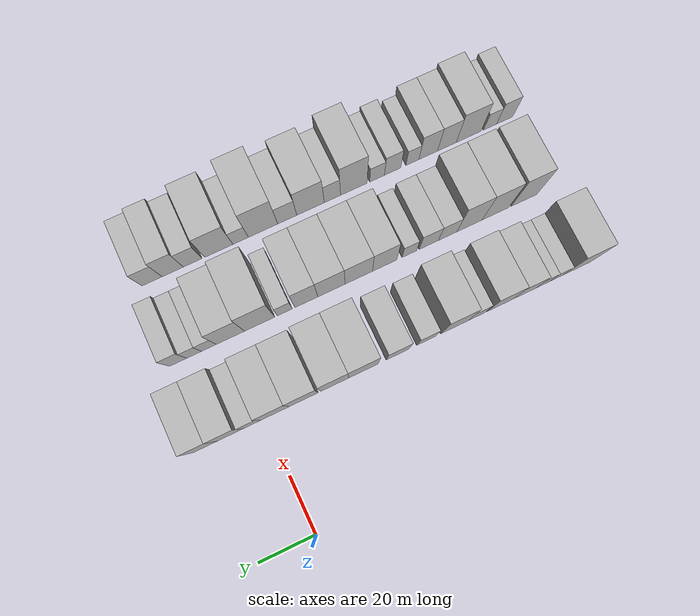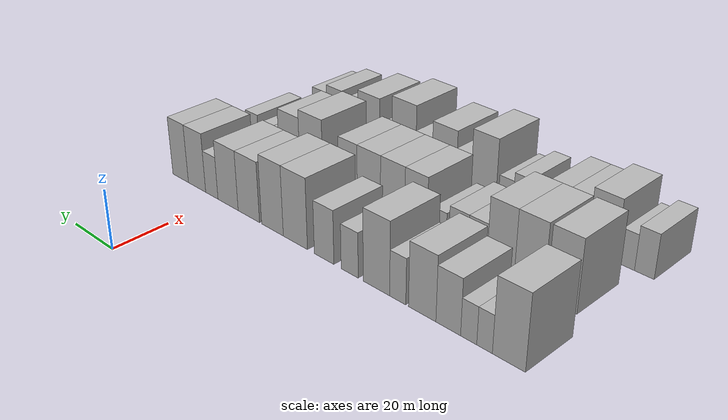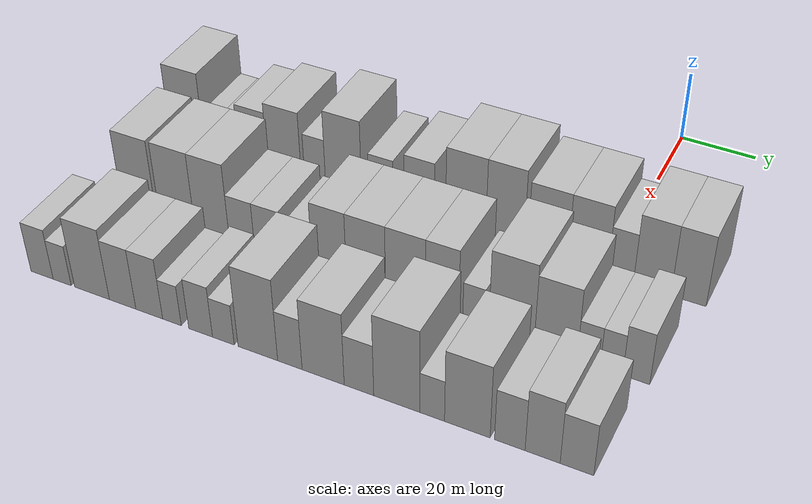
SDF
<sdf version="1.6">
 <world name="default">
  <model name="building_26">
   <static>1</static>
   <pose>50.0000 -116.0989 0 0.000000 0.000000 0.000000</pose>
   <link name="link">
    <pose>0 0 12.00 0 0 0</pose>
    <collision name="collision"><geometry><box><size>20.0000 10.5547 24.0000</size></box></geometry></collision>
    <visual name="visual">
     <cast_shadows>0</cast_shadows>
     <geometry><box><size>20.0000 10.5547 24.0000</size></box></geometry>
     <material>
      <script>
       <uri>model://HANNAS_wall/materials/scripts</uri>
       <uri>model://HANNAS_wall/materials/textures</uri>
       <name>vrc/HANNAS_wall</name>
      </script>
     </material>
    </visual>
   </link>
  </model>
  <model name="building_27">
   <static>1</static>
   <pose>50.0000 -108.2517 0 0.000000 0.000000 0.000000</pose>
   <link name="link">
    <pose>0 0 6.00 0 0 0</pose>
    <collision name="collision"><geometry><box><size>20.0000 5.1396 12.0000</size></box></geometry></collision>
    <visual name="visual">
     <cast_shadows>0</cast_shadows>
     <geometry><box><size>20.0000 5.1396 12.0000</size></box></geometry>
     <material>
      <script>
       <uri>model://HANNAS_wall/materials/scripts</uri>
       <uri>model://HANNAS_wall/materials/textures</uri>
       <name>vrc/HANNAS_wall</name>
      </script>
     </material>
    </visual>
   </link>
  </model>
  <model name="building_28">
   <static>1</static>
   <pose>50.0000 -102.9619 0 0.000000 0.000000 0.000000</pose>
   <link name="link">
    <pose>0 0 6.00 0 0 0</pose>
    <collision name="collision"><geometry><box><size>20.0000 5.4400 12.0000</size></box></geometry></collision>
    <visual name="visual">
     <cast_shadows>0</cast_shadows>
     <geometry><box><size>20.0000 5.4400 12.0000</size></box></geometry>
     <material>
      <script>
       <uri>model://HANNAS_wall/materials/scripts</uri>
       <uri>model://HANNAS_wall/materials/textures</uri>
       <name>vrc/HANNAS_wall</name>
      </script>
     </material>
    </visual>
   </link>
  </model>
  <model name="building_29">
   <static>1</static>
   <pose>50.0000 -95.9530 0 0.000000 0.000000 0.000000</pose>
   <link name="link">
    <pose>0 0 9.00 0 0 0</pose>
    <collision name="collision"><geometry><box><size>20.0000 8.5779 18.0000</size></box></geometry></collision>
    <visual name="visual">
     <cast_shadows>0</cast_shadows>
     <geometry><box><size>20.0000 8.5779 18.0000</size></box></geometry>
     <material>
      <script>
       <uri>model://HANNAS_wall/materials/scripts</uri>
       <uri>model://HANNAS_wall/materials/textures</uri>
       <name>vrc/HANNAS_wall</name>
      </script>
     </material>
    </visual>
   </link>
  </model>
  <model name="building_30">
   <static>1</static>
   <pose>50.0000 -86.7007 0 0.000000 0.000000 0.000000</pose>
   <link name="link">
    <pose>0 0 10.50 0 0 0</pose>
    <collision name="collision"><geometry><box><size>20.0000 9.9268 21.0000</size></box></geometry></collision>
    <visual name="visual">
     <cast_shadows>0</cast_shadows>
     <geometry><box><size>20.0000 9.9268 21.0000</size></box></geometry>
     <material>
      <script>
       <uri>model://HANNAS_wall/materials/scripts</uri>
       <uri>model://HANNAS_wall/materials/textures</uri>
       <name>vrc/HANNAS_wall</name>
      </script>
     </material>
    </visual>
   </link>
  </model>
  <model name="building_31">
   <static>1</static>
   <pose>50.0000 -77.7047 0 0.000000 0.000000 0.000000</pose>
   <link name="link">
    <pose>0 0 7.50 0 0 0</pose>
    <collision name="collision"><geometry><box><size>20.0000 6.0651 15.0000</size></box></geometry></collision>
    <visual name="visual">
     <cast_shadows>0</cast_shadows>
     <geometry><box><size>20.0000 6.0651 15.0000</size></box></geometry>
     <material>
      <script>
       <uri>model://HANNAS_wall/materials/scripts</uri>
       <uri>model://HANNAS_wall/materials/textures</uri>
       <name>vrc/HANNAS_wall</name>
      </script>
     </material>
    </visual>
   </link>
  </model>
  <model name="building_32">
   <static>1</static>
   <pose>50.0000 -69.5270 0 0.000000 0.000000 0.000000</pose>
   <link name="link">
    <pose>0 0 12.00 0 0 0</pose>
    <collision name="collision"><geometry><box><size>20.0000 10.2904 24.0000</size></box></geometry></collision>
    <visual name="visual">
     <cast_shadows>0</cast_shadows>
     <geometry><box><size>20.0000 10.2904 24.0000</size></box></geometry>
     <material>
      <script>
       <uri>model://HANNAS_wall/materials/scripts</uri>
       <uri>model://HANNAS_wall/materials/textures</uri>
       <name>vrc/HANNAS_wall</name>
      </script>
     </material>
    </visual>
   </link>
  </model>
  <model name="building_33">
   <static>1</static>
   <pose>50.0000 -58.9242 0 0.000000 0.000000 0.000000</pose>
   <link name="link">
    <pose>0 0 7.50 0 0 0</pose>
    <collision name="collision"><geometry><box><size>20.0000 6.9151 15.0000</size></box></geometry></collision>
    <visual name="visual">
     <cast_shadows>0</cast_shadows>
     <geometry><box><size>20.0000 6.9151 15.0000</size></box></geometry>
     <material>
      <script>
       <uri>model://HANNAS_wall/materials/scripts</uri>
       <uri>model://HANNAS_wall/materials/textures</uri>
       <name>vrc/HANNAS_wall</name>
      </script>
     </material>
    </visual>
   </link>
  </model>
  <model name="building_34">
   <static>1</static>
   <pose>50.0000 -48.3323 0 0.000000 0.000000 0.000000</pose>
   <link name="link">
    <pose>0 0 9.00 0 0 0</pose>
    <collision name="collision"><geometry><box><size>20.0000 8.2686 18.0000</size></box></geometry></collision>
    <visual name="visual">
     <cast_shadows>0</cast_shadows>
     <geometry><box><size>20.0000 8.2686 18.0000</size></box></geometry>
     <material>
      <script>
       <uri>model://HANNAS_wall/materials/scripts</uri>
       <uri>model://HANNAS_wall/materials/textures</uri>
       <name>vrc/HANNAS_wall</name>
      </script>
     </material>
    </visual>
   </link>
  </model>
  <model name="building_35">
   <static>1</static>
   <pose>50.0000 -35.8312 0 0.000000 0.000000 0.000000</pose>
   <link name="link">
    <pose>0 0 12.00 0 0 0</pose>
    <collision name="collision"><geometry><box><size>20.0000 10.7336 24.0000</size></box></geometry></collision>
    <visual name="visual">
     <cast_shadows>0</cast_shadows>
     <geometry><box><size>20.0000 10.7336 24.0000</size></box></geometry>
     <material>
      <script>
       <uri>model://HANNAS_wall/materials/scripts</uri>
       <uri>model://HANNAS_wall/materials/textures</uri>
       <name>vrc/HANNAS_wall</name>
      </script>
     </material>
    </visual>
   </link>
  </model>
  <model name="building_36">
   <static>1</static>
   <pose>50.0000 -25.4489 0 0.000000 0.000000 0.000000</pose>
   <link name="link">
    <pose>0 0 12.00 0 0 0</pose>
    <collision name="collision"><geometry><box><size>20.0000 10.0312 24.0000</size></box></geometry></collision>
    <visual name="visual">
     <cast_shadows>0</cast_shadows>
     <geometry><box><size>20.0000 10.0312 24.0000</size></box></geometry>
     <material>
      <script>
       <uri>model://HANNAS_wall/materials/scripts</uri>
       <uri>model://HANNAS_wall/materials/textures</uri>
       <name>vrc/HANNAS_wall</name>
      </script>
     </material>
    </visual>
   </link>
  </model>
  <model name="building_37">
   <static>1</static>
   <pose>50.0000 -14.2747 0 0.000000 0.000000 0.000000</pose>
   <link name="link">
    <pose>0 0 10.50 0 0 0</pose>
    <collision name="collision"><geometry><box><size>20.0000 10.3172 21.0000</size></box></geometry></collision>
    <visual name="visual">
     <cast_shadows>0</cast_shadows>
     <geometry><box><size>20.0000 10.3172 21.0000</size></box></geometry>
     <material>
      <script>
       <uri>model://HANNAS_wall/materials/scripts</uri>
       <uri>model://HANNAS_wall/materials/textures</uri>
       <name>vrc/HANNAS_wall</name>
      </script>
     </material>
    </visual>
   </link>
  </model>
  <model name="building_38">
   <static>1</static>
   <pose>50.0000 -4.0690 0 0.000000 0.000000 0.000000</pose>
   <link name="link">
    <pose>0 0 10.50 0 0 0</pose>
    <collision name="collision"><geometry><box><size>20.0000 10.0940 21.0000</size></box></geometry></collision>
    <visual name="visual">
     <cast_shadows>0</cast_shadows>
     <geometry><box><size>20.0000 10.0940 21.0000</size></box></geometry>
     <material>
      <script>
       <uri>model://HANNAS_wall/materials/scripts</uri>
       <uri>model://HANNAS_wall/materials/textures</uri>
       <name>vrc/HANNAS_wall</name>
      </script>
     </material>
    </visual>
   </link>
  </model>
  <model name="building_39">
   <static>1</static>
   <pose>50.0000 4.1592 0 0.000000 0.000000 0.000000</pose>
   <link name="link">
    <pose>0 0 7.50 0 0 0</pose>
    <collision name="collision"><geometry><box><size>20.0000 6.3625 15.0000</size></box></geometry></collision>
    <visual name="visual">
     <cast_shadows>0</cast_shadows>
     <geometry><box><size>20.0000 6.3625 15.0000</size></box></geometry>
     <material>
      <script>
       <uri>model://HANNAS_wall/materials/scripts</uri>
       <uri>model://HANNAS_wall/materials/textures</uri>
       <name>vrc/HANNAS_wall</name>
      </script>
     </material>
    </visual>
   </link>
  </model>
  <model name="building_40">
   <static>1</static>
   <pose>50.0000 11.9197 0 0.000000 0.000000 0.000000</pose>
   <link name="link">
    <pose>0 0 10.50 0 0 0</pose>
    <collision name="collision"><geometry><box><size>20.0000 9.1584 21.0000</size></box></geometry></collision>
    <visual name="visual">
     <cast_shadows>0</cast_shadows>
     <geometry><box><size>20.0000 9.1584 21.0000</size></box></geometry>
     <material>
      <script>
       <uri>model://HANNAS_wall/materials/scripts</uri>
       <uri>model://HANNAS_wall/materials/textures</uri>
       <name>vrc/HANNAS_wall</name>
      </script>
     </material>
    </visual>
   </link>
  </model>
  <model name="building_41">
   <static>1</static>
   <pose>50.0000 20.7276 0 0.000000 0.000000 0.000000</pose>
   <link name="link">
    <pose>0 0 10.50 0 0 0</pose>
    <collision name="collision"><geometry><box><size>20.0000 8.4575 21.0000</size></box></geometry></collision>
    <visual name="visual">
     <cast_shadows>0</cast_shadows>
     <geometry><box><size>20.0000 8.4575 21.0000</size></box></geometry>
     <material>
      <script>
       <uri>model://HANNAS_wall/materials/scripts</uri>
       <uri>model://HANNAS_wall/materials/textures</uri>
       <name>vrc/HANNAS_wall</name>
      </script>
     </material>
    </visual>
   </link>
  </model>
  <model name="building_99">
   <static>1</static>
   <pose>79.0000 -111.3327 0 0.000000 0.000000 0.000000</pose>
   <link name="link">
    <pose>0 0 12.00 0 0 0</pose>
    <collision name="collision"><geometry><box><size>20.0000 10.0798 24.0000</size></box></geometry></collision>
    <visual name="visual">
     <cast_shadows>0</cast_shadows>
     <geometry><box><size>20.0000 10.0798 24.0000</size></box></geometry>
     <material>
      <script>
       <uri>model://HANNAS_wall/materials/scripts</uri>
       <uri>model://HANNAS_wall/materials/textures</uri>
       <name>vrc/HANNAS_wall</name>
      </script>
     </material>
    </visual>
   </link>
  </model>
  <model name="building_100">
   <static>1</static>
   <pose>79.0000 -100.1573 0 0.000000 0.000000 0.000000</pose>
   <link name="link">
    <pose>0 0 12.00 0 0 0</pose>
    <collision name="collision"><geometry><box><size>20.0000 10.2710 24.0000</size></box></geometry></collision>
    <visual name="visual">
     <cast_shadows>0</cast_shadows>
     <geometry><box><size>20.0000 10.2710 24.0000</size></box></geometry>
     <material>
      <script>
       <uri>model://HANNAS_wall/materials/scripts</uri>
       <uri>model://HANNAS_wall/materials/textures</uri>
       <name>vrc/HANNAS_wall</name>
      </script>
     </material>
    </visual>
   </link>
  </model>
  <model name="building_101">
   <static>1</static>
   <pose>79.0000 -90.1085 0 0.000000 0.000000 0.000000</pose>
   <link name="link">
    <pose>0 0 12.00 0 0 0</pose>
    <collision name="collision"><geometry><box><size>20.0000 9.8265 24.0000</size></box></geometry></collision>
    <visual name="visual">
     <cast_shadows>0</cast_shadows>
     <geometry><box><size>20.0000 9.8265 24.0000</size></box></geometry>
     <material>
      <script>
       <uri>model://HANNAS_wall/materials/scripts</uri>
       <uri>model://HANNAS_wall/materials/textures</uri>
       <name>vrc/HANNAS_wall</name>
      </script>
     </material>
    </visual>
   </link>
  </model>
  <model name="building_102">
   <static>1</static>
   <pose>79.0000 -81.6660 0 0.000000 0.000000 0.000000</pose>
   <link name="link">
    <pose>0 0 7.50 0 0 0</pose>
    <collision name="collision"><geometry><box><size>20.0000 7.0586 15.0000</size></box></geometry></collision>
    <visual name="visual">
     <cast_shadows>0</cast_shadows>
     <geometry><box><size>20.0000 7.0586 15.0000</size></box></geometry>
     <material>
      <script>
       <uri>model://HANNAS_wall/materials/scripts</uri>
       <uri>model://HANNAS_wall/materials/textures</uri>
       <name>vrc/HANNAS_wall</name>
      </script>
     </material>
    </visual>
   </link>
  </model>
  <model name="building_103">
   <static>1</static>
   <pose>79.0000 -74.4767 0 0.000000 0.000000 0.000000</pose>
   <link name="link">
    <pose>0 0 7.50 0 0 0</pose>
    <collision name="collision"><geometry><box><size>20.0000 7.3200 15.0000</size></box></geometry></collision>
    <visual name="visual">
     <cast_shadows>0</cast_shadows>
     <geometry><box><size>20.0000 7.3200 15.0000</size></box></geometry>
     <material>
      <script>
       <uri>model://HANNAS_wall/materials/scripts</uri>
       <uri>model://HANNAS_wall/materials/textures</uri>
       <name>vrc/HANNAS_wall</name>
      </script>
     </material>
    </visual>
   </link>
  </model>
  <model name="building_104">
   <static>1</static>
   <pose>79.0000 -67.0640 0 0.000000 0.000000 0.000000</pose>
   <link name="link">
    <pose>0 0 6.00 0 0 0</pose>
    <collision name="collision"><geometry><box><size>20.0000 5.5054 12.0000</size></box></geometry></collision>
    <visual name="visual">
     <cast_shadows>0</cast_shadows>
     <geometry><box><size>20.0000 5.5054 12.0000</size></box></geometry>
     <material>
      <script>
       <uri>model://HANNAS_wall/materials/scripts</uri>
       <uri>model://HANNAS_wall/materials/textures</uri>
       <name>vrc/HANNAS_wall</name>
      </script>
     </material>
    </visual>
   </link>
  </model>
  <model name="building_105">
   <static>1</static>
   <pose>79.0000 -57.7347 0 0.000000 0.000000 0.000000</pose>
   <link name="link">
    <pose>0 0 10.50 0 0 0</pose>
    <collision name="collision"><geometry><box><size>20.0000 9.1532 21.0000</size></box></geometry></collision>
    <visual name="visual">
     <cast_shadows>0</cast_shadows>
     <geometry><box><size>20.0000 9.1532 21.0000</size></box></geometry>
     <material>
      <script>
       <uri>model://HANNAS_wall/materials/scripts</uri>
       <uri>model://HANNAS_wall/materials/textures</uri>
       <name>vrc/HANNAS_wall</name>
      </script>
     </material>
    </visual>
   </link>
  </model>
  <model name="building_106">
   <static>1</static>
   <pose>79.0000 -48.0310 0 0.000000 0.000000 0.000000</pose>
   <link name="link">
    <pose>0 0 10.50 0 0 0</pose>
    <collision name="collision"><geometry><box><size>20.0000 10.2543 21.0000</size></box></geometry></collision>
    <visual name="visual">
     <cast_shadows>0</cast_shadows>
     <geometry><box><size>20.0000 10.2543 21.0000</size></box></geometry>
     <material>
      <script>
       <uri>model://HANNAS_wall/materials/scripts</uri>
       <uri>model://HANNAS_wall/materials/textures</uri>
       <name>vrc/HANNAS_wall</name>
      </script>
     </material>
    </visual>
   </link>
  </model>
  <model name="building_107">
   <static>1</static>
   <pose>79.0000 -37.8188 0 0.000000 0.000000 0.000000</pose>
   <link name="link">
    <pose>0 0 10.50 0 0 0</pose>
    <collision name="collision"><geometry><box><size>20.0000 10.1700 21.0000</size></box></geometry></collision>
    <visual name="visual">
     <cast_shadows>0</cast_shadows>
     <geometry><box><size>20.0000 10.1700 21.0000</size></box></geometry>
     <material>
      <script>
       <uri>model://HANNAS_wall/materials/scripts</uri>
       <uri>model://HANNAS_wall/materials/textures</uri>
       <name>vrc/HANNAS_wall</name>
      </script>
     </material>
    </visual>
   </link>
  </model>
  <model name="building_108">
   <static>1</static>
   <pose>79.0000 -28.5317 0 0.000000 0.000000 0.000000</pose>
   <link name="link">
    <pose>0 0 10.50 0 0 0</pose>
    <collision name="collision"><geometry><box><size>20.0000 8.4044 21.0000</size></box></geometry></collision>
    <visual name="visual">
     <cast_shadows>0</cast_shadows>
     <geometry><box><size>20.0000 8.4044 21.0000</size></box></geometry>
     <material>
      <script>
       <uri>model://HANNAS_wall/materials/scripts</uri>
       <uri>model://HANNAS_wall/materials/textures</uri>
       <name>vrc/HANNAS_wall</name>
      </script>
     </material>
    </visual>
   </link>
  </model>
  <model name="building_109">
   <static>1</static>
   <pose>79.0000 -20.6096 0 0.000000 0.000000 0.000000</pose>
   <link name="link">
    <pose>0 0 6.00 0 0 0</pose>
    <collision name="collision"><geometry><box><size>20.0000 5.4398 12.0000</size></box></geometry></collision>
    <visual name="visual">
     <cast_shadows>0</cast_shadows>
     <geometry><box><size>20.0000 5.4398 12.0000</size></box></geometry>
     <material>
      <script>
       <uri>model://HANNAS_wall/materials/scripts</uri>
       <uri>model://HANNAS_wall/materials/textures</uri>
       <name>vrc/HANNAS_wall</name>
      </script>
     </material>
    </visual>
   </link>
  </model>
  <model name="building_110">
   <static>1</static>
   <pose>79.0000 -11.3676 0 0.000000 0.000000 0.000000</pose>
   <link name="link">
    <pose>0 0 12.00 0 0 0</pose>
    <collision name="collision"><geometry><box><size>20.0000 11.0440 24.0000</size></box></geometry></collision>
    <visual name="visual">
     <cast_shadows>0</cast_shadows>
     <geometry><box><size>20.0000 11.0440 24.0000</size></box></geometry>
     <material>
      <script>
       <uri>model://HANNAS_wall/materials/scripts</uri>
       <uri>model://HANNAS_wall/materials/textures</uri>
       <name>vrc/HANNAS_wall</name>
      </script>
     </material>
    </visual>
   </link>
  </model>
  <model name="building_111">
   <static>1</static>
   <pose>79.0000 -0.7210 0 0.000000 0.000000 0.000000</pose>
   <link name="link">
    <pose>0 0 10.50 0 0 0</pose>
    <collision name="collision"><geometry><box><size>20.0000 10.2492 21.0000</size></box></geometry></collision>
    <visual name="visual">
     <cast_shadows>0</cast_shadows>
     <geometry><box><size>20.0000 10.2492 21.0000</size></box></geometry>
     <material>
      <script>
       <uri>model://HANNAS_wall/materials/scripts</uri>
       <uri>model://HANNAS_wall/materials/textures</uri>
       <name>vrc/HANNAS_wall</name>
      </script>
     </material>
    </visual>
   </link>
  </model>
  <model name="building_112">
   <static>1</static>
   <pose>79.0000 7.0913 0 0.000000 0.000000 0.000000</pose>
   <link name="link">
    <pose>0 0 6.00 0 0 0</pose>
    <collision name="collision"><geometry><box><size>20.0000 5.3755 12.0000</size></box></geometry></collision>
    <visual name="visual">
     <cast_shadows>0</cast_shadows>
     <geometry><box><size>20.0000 5.3755 12.0000</size></box></geometry>
     <material>
      <script>
       <uri>model://HANNAS_wall/materials/scripts</uri>
       <uri>model://HANNAS_wall/materials/textures</uri>
       <name>vrc/HANNAS_wall</name>
      </script>
     </material>
    </visual>
   </link>
  </model>
  <model name="building_113">
   <static>1</static>
   <pose>79.0000 12.3919 0 0.000000 0.000000 0.000000</pose>
   <link name="link">
    <pose>0 0 6.00 0 0 0</pose>
    <collision name="collision"><geometry><box><size>20.0000 5.2257 12.0000</size></box></geometry></collision>
    <visual name="visual">
     <cast_shadows>0</cast_shadows>
     <geometry><box><size>20.0000 5.2257 12.0000</size></box></geometry>
     <material>
      <script>
       <uri>model://HANNAS_wall/materials/scripts</uri>
       <uri>model://HANNAS_wall/materials/textures</uri>
       <name>vrc/HANNAS_wall</name>
      </script>
     </material>
    </visual>
   </link>
  </model>
  <model name="building_114">
   <static>1</static>
   <pose>79.0000 18.1081 0 0.000000 0.000000 0.000000</pose>
   <link name="link">
    <pose>0 0 7.50 0 0 0</pose>
    <collision name="collision"><geometry><box><size>20.0000 6.2067 15.0000</size></box></geometry></collision>
    <visual name="visual">
     <cast_shadows>0</cast_shadows>
     <geometry><box><size>20.0000 6.2067 15.0000</size></box></geometry>
     <material>
      <script>
       <uri>model://HANNAS_wall/materials/scripts</uri>
       <uri>model://HANNAS_wall/materials/textures</uri>
       <name>vrc/HANNAS_wall</name>
      </script>
     </material>
    </visual>
   </link>
  </model>
  <model name="building_168">
   <static>1</static>
   <pose>108.0000 -119.0453 0 0.000000 0.000000 0.000000</pose>
   <link name="link">
    <pose>0 0 7.50 0 0 0</pose>
    <collision name="collision"><geometry><box><size>20.0000 6.4365 15.0000</size></box></geometry></collision>
    <visual name="visual">
     <cast_shadows>0</cast_shadows>
     <geometry><box><size>20.0000 6.4365 15.0000</size></box></geometry>
     <material>
      <script>
       <uri>model://HANNAS_wall/materials/scripts</uri>
       <uri>model://HANNAS_wall/materials/textures</uri>
       <name>vrc/HANNAS_wall</name>
      </script>
     </material>
    </visual>
   </link>
  </model>
  <model name="building_169">
   <static>1</static>
   <pose>108.0000 -113.2398 0 0.000000 0.000000 0.000000</pose>
   <link name="link">
    <pose>0 0 6.00 0 0 0</pose>
    <collision name="collision"><geometry><box><size>20.0000 5.1745 12.0000</size></box></geometry></collision>
    <visual name="visual">
     <cast_shadows>0</cast_shadows>
     <geometry><box><size>20.0000 5.1745 12.0000</size></box></geometry>
     <material>
      <script>
       <uri>model://HANNAS_wall/materials/scripts</uri>
       <uri>model://HANNAS_wall/materials/textures</uri>
       <name>vrc/HANNAS_wall</name>
      </script>
     </material>
    </visual>
   </link>
  </model>
  <model name="building_170">
   <static>1</static>
   <pose>108.0000 -104.7421 0 0.000000 0.000000 0.000000</pose>
   <link name="link">
    <pose>0 0 10.50 0 0 0</pose>
    <collision name="collision"><geometry><box><size>20.0000 9.8209 21.0000</size></box></geometry></collision>
    <visual name="visual">
     <cast_shadows>0</cast_shadows>
     <geometry><box><size>20.0000 9.8209 21.0000</size></box></geometry>
     <material>
      <script>
       <uri>model://HANNAS_wall/materials/scripts</uri>
       <uri>model://HANNAS_wall/materials/textures</uri>
       <name>vrc/HANNAS_wall</name>
      </script>
     </material>
    </visual>
   </link>
  </model>
  <model name="building_171">
   <static>1</static>
   <pose>108.0000 -96.1508 0 0.000000 0.000000 0.000000</pose>
   <link name="link">
    <pose>0 0 9.00 0 0 0</pose>
    <collision name="collision"><geometry><box><size>20.0000 7.3617 18.0000</size></box></geometry></collision>
    <visual name="visual">
     <cast_shadows>0</cast_shadows>
     <geometry><box><size>20.0000 7.3617 18.0000</size></box></geometry>
     <material>
      <script>
       <uri>model://HANNAS_wall/materials/scripts</uri>
       <uri>model://HANNAS_wall/materials/textures</uri>
       <name>vrc/HANNAS_wall</name>
      </script>
     </material>
    </visual>
   </link>
  </model>
  <model name="building_172">
   <static>1</static>
   <pose>108.0000 -88.8111 0 0.000000 0.000000 0.000000</pose>
   <link name="link">
    <pose>0 0 9.00 0 0 0</pose>
    <collision name="collision"><geometry><box><size>20.0000 7.3175 18.0000</size></box></geometry></collision>
    <visual name="visual">
     <cast_shadows>0</cast_shadows>
     <geometry><box><size>20.0000 7.3175 18.0000</size></box></geometry>
     <material>
      <script>
       <uri>model://HANNAS_wall/materials/scripts</uri>
       <uri>model://HANNAS_wall/materials/textures</uri>
       <name>vrc/HANNAS_wall</name>
      </script>
     </material>
    </visual>
   </link>
  </model>
  <model name="building_173">
   <static>1</static>
   <pose>108.0000 -82.6396 0 0.000000 0.000000 0.000000</pose>
   <link name="link">
    <pose>0 0 6.00 0 0 0</pose>
    <collision name="collision"><geometry><box><size>20.0000 5.0255 12.0000</size></box></geometry></collision>
    <visual name="visual">
     <cast_shadows>0</cast_shadows>
     <geometry><box><size>20.0000 5.0255 12.0000</size></box></geometry>
     <material>
      <script>
       <uri>model://HANNAS_wall/materials/scripts</uri>
       <uri>model://HANNAS_wall/materials/textures</uri>
       <name>vrc/HANNAS_wall</name>
      </script>
     </material>
    </visual>
   </link>
  </model>
  <model name="building_174">
   <static>1</static>
   <pose>108.0000 -74.9684 0 0.000000 0.000000 0.000000</pose>
   <link name="link">
    <pose>0 0 7.50 0 0 0</pose>
    <collision name="collision"><geometry><box><size>20.0000 6.3171 15.0000</size></box></geometry></collision>
    <visual name="visual">
     <cast_shadows>0</cast_shadows>
     <geometry><box><size>20.0000 6.3171 15.0000</size></box></geometry>
     <material>
      <script>
       <uri>model://HANNAS_wall/materials/scripts</uri>
       <uri>model://HANNAS_wall/materials/textures</uri>
       <name>vrc/HANNAS_wall</name>
      </script>
     </material>
    </visual>
   </link>
  </model>
  <model name="building_175">
   <static>1</static>
   <pose>108.0000 -68.9609 0 0.000000 0.000000 0.000000</pose>
   <link name="link">
    <pose>0 0 6.00 0 0 0</pose>
    <collision name="collision"><geometry><box><size>20.0000 5.6979 12.0000</size></box></geometry></collision>
    <visual name="visual">
     <cast_shadows>0</cast_shadows>
     <geometry><box><size>20.0000 5.6979 12.0000</size></box></geometry>
     <material>
      <script>
       <uri>model://HANNAS_wall/materials/scripts</uri>
       <uri>model://HANNAS_wall/materials/textures</uri>
       <name>vrc/HANNAS_wall</name>
      </script>
     </material>
    </visual>
   </link>
  </model>
  <model name="building_176">
   <static>1</static>
   <pose>108.0000 -60.0193 0 0.000000 0.000000 0.000000</pose>
   <link name="link">
    <pose>0 0 12.00 0 0 0</pose>
    <collision name="collision"><geometry><box><size>20.0000 10.1853 24.0000</size></box></geometry></collision>
    <visual name="visual">
     <cast_shadows>0</cast_shadows>
     <geometry><box><size>20.0000 10.1853 24.0000</size></box></geometry>
     <material>
      <script>
       <uri>model://HANNAS_wall/materials/scripts</uri>
       <uri>model://HANNAS_wall/materials/textures</uri>
       <name>vrc/HANNAS_wall</name>
      </script>
     </material>
    </visual>
   </link>
  </model>
  <model name="building_177">
   <static>1</static>
   <pose>108.0000 -51.8318 0 0.000000 0.000000 0.000000</pose>
   <link name="link">
    <pose>0 0 7.50 0 0 0</pose>
    <collision name="collision"><geometry><box><size>20.0000 6.1897 15.0000</size></box></geometry></collision>
    <visual name="visual">
     <cast_shadows>0</cast_shadows>
     <geometry><box><size>20.0000 6.1897 15.0000</size></box></geometry>
     <material>
      <script>
       <uri>model://HANNAS_wall/materials/scripts</uri>
       <uri>model://HANNAS_wall/materials/textures</uri>
       <name>vrc/HANNAS_wall</name>
      </script>
     </material>
    </visual>
   </link>
  </model>
  <model name="building_178">
   <static>1</static>
   <pose>108.0000 -43.5092 0 0.000000 0.000000 0.000000</pose>
   <link name="link">
    <pose>0 0 10.50 0 0 0</pose>
    <collision name="collision"><geometry><box><size>20.0000 10.4555 21.0000</size></box></geometry></collision>
    <visual name="visual">
     <cast_shadows>0</cast_shadows>
     <geometry><box><size>20.0000 10.4555 21.0000</size></box></geometry>
     <material>
      <script>
       <uri>model://HANNAS_wall/materials/scripts</uri>
       <uri>model://HANNAS_wall/materials/textures</uri>
       <name>vrc/HANNAS_wall</name>
      </script>
     </material>
    </visual>
   </link>
  </model>
  <model name="building_179">
   <static>1</static>
   <pose>108.0000 -34.6858 0 0.000000 0.000000 0.000000</pose>
   <link name="link">
    <pose>0 0 7.50 0 0 0</pose>
    <collision name="collision"><geometry><box><size>20.0000 7.1914 15.0000</size></box></geometry></collision>
    <visual name="visual">
     <cast_shadows>0</cast_shadows>
     <geometry><box><size>20.0000 7.1914 15.0000</size></box></geometry>
     <material>
      <script>
       <uri>model://HANNAS_wall/materials/scripts</uri>
       <uri>model://HANNAS_wall/materials/textures</uri>
       <name>vrc/HANNAS_wall</name>
      </script>
     </material>
    </visual>
   </link>
  </model>
  <model name="building_180">
   <static>1</static>
   <pose>108.0000 -25.5938 0 0.000000 0.000000 0.000000</pose>
   <link name="link">
    <pose>0 0 12.00 0 0 0</pose>
    <collision name="collision"><geometry><box><size>20.0000 10.9926 24.0000</size></box></geometry></collision>
    <visual name="visual">
     <cast_shadows>0</cast_shadows>
     <geometry><box><size>20.0000 10.9926 24.0000</size></box></geometry>
     <material>
      <script>
       <uri>model://HANNAS_wall/materials/scripts</uri>
       <uri>model://HANNAS_wall/materials/textures</uri>
       <name>vrc/HANNAS_wall</name>
      </script>
     </material>
    </visual>
   </link>
  </model>
  <model name="building_181">
   <static>1</static>
   <pose>108.0000 -17.2026 0 0.000000 0.000000 0.000000</pose>
   <link name="link">
    <pose>0 0 6.00 0 0 0</pose>
    <collision name="collision"><geometry><box><size>20.0000 5.7899 12.0000</size></box></geometry></collision>
    <visual name="visual">
     <cast_shadows>0</cast_shadows>
     <geometry><box><size>20.0000 5.7899 12.0000</size></box></geometry>
     <material>
      <script>
       <uri>model://HANNAS_wall/materials/scripts</uri>
       <uri>model://HANNAS_wall/materials/textures</uri>
       <name>vrc/HANNAS_wall</name>
      </script>
     </material>
    </visual>
   </link>
  </model>
  <model name="building_182">
   <static>1</static>
   <pose>108.0000 -9.0669 0 0.000000 0.000000 0.000000</pose>
   <link name="link">
    <pose>0 0 10.50 0 0 0</pose>
    <collision name="collision"><geometry><box><size>20.0000 10.4814 21.0000</size></box></geometry></collision>
    <visual name="visual">
     <cast_shadows>0</cast_shadows>
     <geometry><box><size>20.0000 10.4814 21.0000</size></box></geometry>
     <material>
      <script>
       <uri>model://HANNAS_wall/materials/scripts</uri>
       <uri>model://HANNAS_wall/materials/textures</uri>
       <name>vrc/HANNAS_wall</name>
      </script>
     </material>
    </visual>
   </link>
  </model>
  <model name="building_183">
   <static>1</static>
   <pose>108.0000 0.6115 0 0.000000 0.000000 0.000000</pose>
   <link name="link">
    <pose>0 0 7.50 0 0 0</pose>
    <collision name="collision"><geometry><box><size>20.0000 6.8754 15.0000</size></box></geometry></collision>
    <visual name="visual">
     <cast_shadows>0</cast_shadows>
     <geometry><box><size>20.0000 6.8754 15.0000</size></box></geometry>
     <material>
      <script>
       <uri>model://HANNAS_wall/materials/scripts</uri>
       <uri>model://HANNAS_wall/materials/textures</uri>
       <name>vrc/HANNAS_wall</name>
      </script>
     </material>
    </visual>
   </link>
  </model>
  <model name="building_184">
   <static>1</static>
   <pose>108.0000 7.9285 0 0.000000 0.000000 0.000000</pose>
   <link name="link">
    <pose>0 0 9.00 0 0 0</pose>
    <collision name="collision"><geometry><box><size>20.0000 7.7584 18.0000</size></box></geometry></collision>
    <visual name="visual">
     <cast_shadows>0</cast_shadows>
     <geometry><box><size>20.0000 7.7584 18.0000</size></box></geometry>
     <material>
      <script>
       <uri>model://HANNAS_wall/materials/scripts</uri>
       <uri>model://HANNAS_wall/materials/textures</uri>
       <name>vrc/HANNAS_wall</name>
      </script>
     </material>
    </visual>
   </link>
  </model>
  <model name="building_185">
   <static>1</static>
   <pose>108.0000 15.4699 0 0.000000 0.000000 0.000000</pose>
   <link name="link">
    <pose>0 0 7.50 0 0 0</pose>
    <collision name="collision"><geometry><box><size>20.0000 7.3244 15.0000</size></box></geometry></collision>
    <visual name="visual">
     <cast_shadows>0</cast_shadows>
     <geometry><box><size>20.0000 7.3244 15.0000</size></box></geometry>
     <material>
      <script>
       <uri>model://HANNAS_wall/materials/scripts</uri>
       <uri>model://HANNAS_wall/materials/textures</uri>
       <name>vrc/HANNAS_wall</name>
      </script>
     </material>
    </visual>
   </link>
  </model>
 </world>
</sdf>
